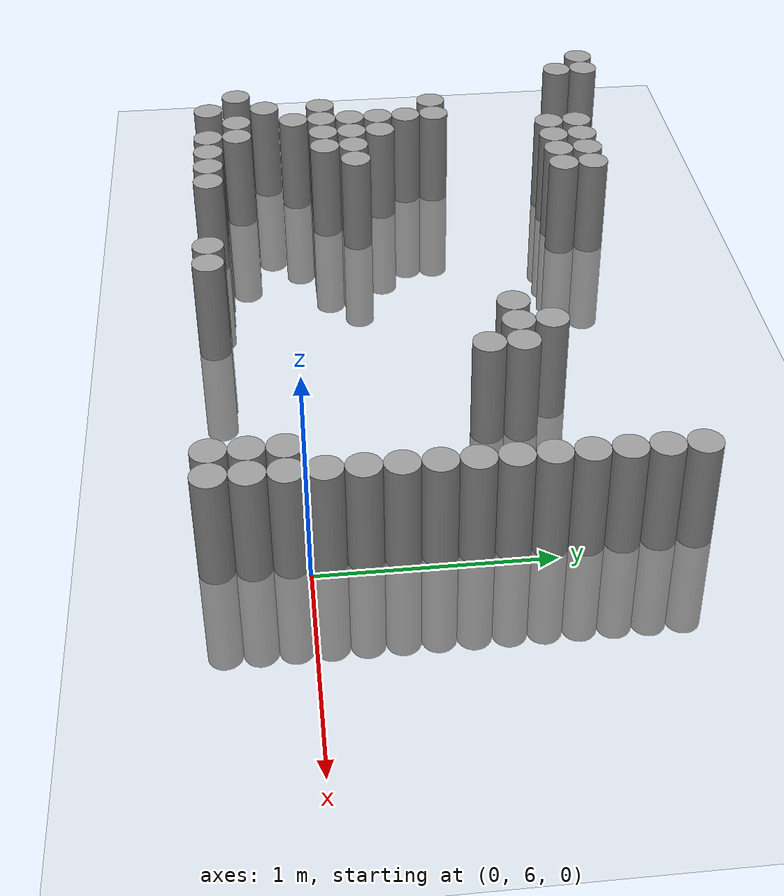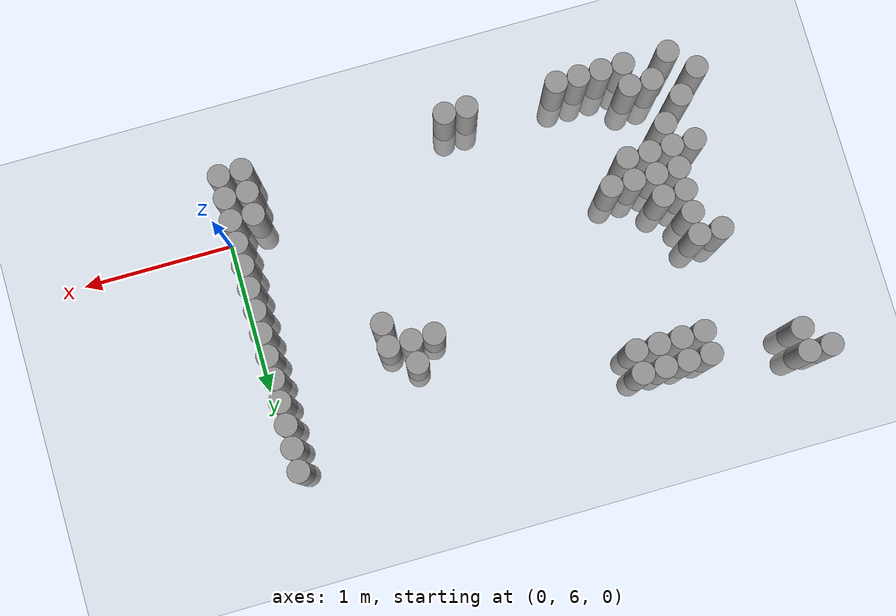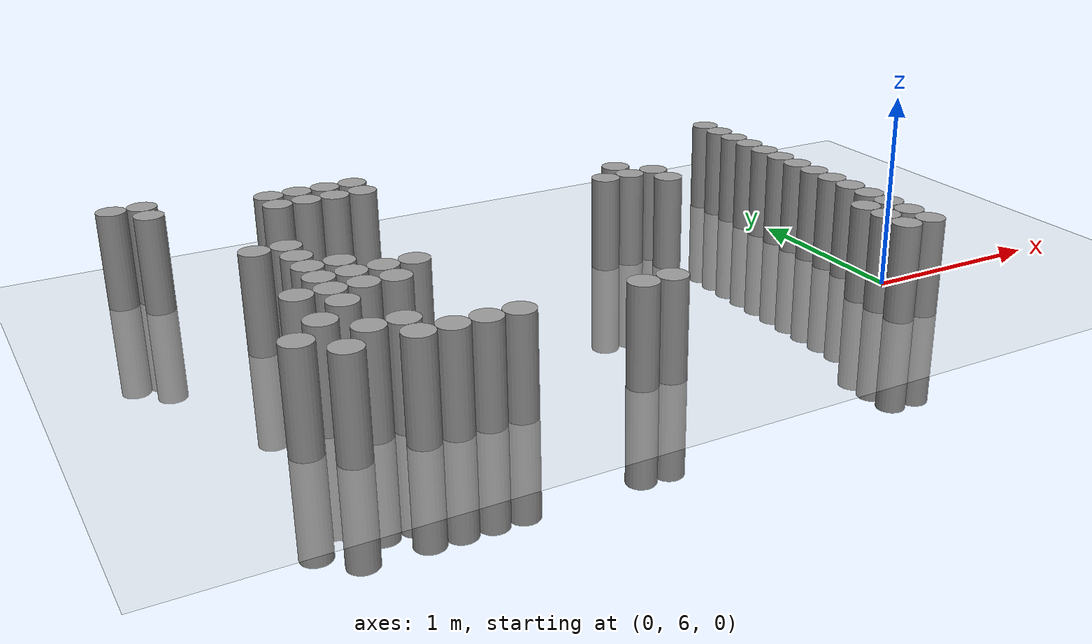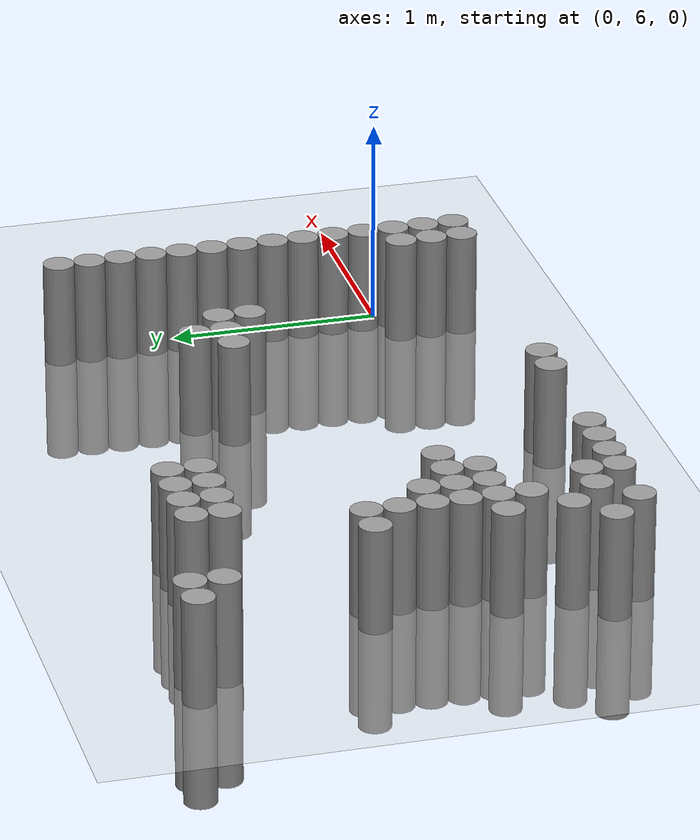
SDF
<sdf version="1.6">
 <world name="default">
  <model name="ground_plane">
   <static>1</static>
   <static>1</static>
   <link name="link">
    <collision name="collision">
     <geometry><plane><normal>0 0 1</normal><size>100 100</size></plane></geometry>
     <surface><friction><ode><mu>100</mu><mu2>50</mu2></ode></friction></surface>
    </collision>
    <visual name="visual">
     <cast_shadows>0</cast_shadows>
     <geometry><plane><normal>0 0 1</normal><size>100 100</size></plane></geometry>
     <material>
      <script><uri>file://media/materials/scripts/gazebo.material</uri><name>Gazebo/Grey</name></script>
     </material>
    </visual>
   </link>
  </model>
  <model name="unit_cylinder_164">
   <static>1</static>
   <pose>-3.525000 7.725000 0.000000 0.000000 0.000000 0.000000</pose>
   <link name="link">
    <inertial>
     <mass>1</mass>
     <inertia><ixx>0.145833</ixx><ixy>0</ixy><ixz>0</ixz><iyy>0.145833</iyy><iyz>0</iyz><izz>0.125</izz></inertia>
    </inertial>
    <collision name="collision">
     <geometry><cylinder><radius>0.075000</radius><length>1</length></cylinder></geometry>
    </collision>
    <visual name="visual">
     <geometry><cylinder><radius>0.075000</radius><length>1</length></cylinder></geometry>
     <material>
      <script><name>Gazebo/Grey</name><uri>file://media/materials/scripts/gazebo.material</uri></script>
     </material>
    </visual>
   </link>
  </model>
  <model name="unit_cylinder_165">
   <static>1</static>
   <pose>-3.375000 7.575000 0.000000 0.000000 0.000000 0.000000</pose>
   <link name="link">
    <inertial>
     <mass>1</mass>
     <inertia><ixx>0.145833</ixx><ixy>0</ixy><ixz>0</ixz><iyy>0.145833</iyy><iyz>0</iyz><izz>0.125</izz></inertia>
    </inertial>
    <collision name="collision">
     <geometry><cylinder><radius>0.075000</radius><length>1</length></cylinder></geometry>
    </collision>
    <visual name="visual">
     <geometry><cylinder><radius>0.075000</radius><length>1</length></cylinder></geometry>
     <material>
      <script><name>Gazebo/Grey</name><uri>file://media/materials/scripts/gazebo.material</uri></script>
     </material>
    </visual>
   </link>
  </model>
  <model name="unit_cylinder_166">
   <static>1</static>
   <pose>-3.375000 7.725000 0.000000 0.000000 0.000000 0.000000</pose>
   <link name="link">
    <inertial>
     <mass>1</mass>
     <inertia><ixx>0.145833</ixx><ixy>0</ixy><ixz>0</ixz><iyy>0.145833</iyy><iyz>0</iyz><izz>0.125</izz></inertia>
    </inertial>
    <collision name="collision">
     <geometry><cylinder><radius>0.075000</radius><length>1</length></cylinder></geometry>
    </collision>
    <visual name="visual">
     <geometry><cylinder><radius>0.075000</radius><length>1</length></cylinder></geometry>
     <material>
      <script><name>Gazebo/Grey</name><uri>file://media/materials/scripts/gazebo.material</uri></script>
     </material>
    </visual>
   </link>
  </model>
  <model name="unit_cylinder_167">
   <static>1</static>
   <pose>-3.225000 5.775000 0.000000 0.000000 0.000000 0.000000</pose>
   <link name="link">
    <inertial>
     <mass>1</mass>
     <inertia><ixx>0.145833</ixx><ixy>0</ixy><ixz>0</ixz><iyy>0.145833</iyy><iyz>0</iyz><izz>0.125</izz></inertia>
    </inertial>
    <collision name="collision">
     <geometry><cylinder><radius>0.075000</radius><length>1</length></cylinder></geometry>
    </collision>
    <visual name="visual">
     <geometry><cylinder><radius>0.075000</radius><length>1</length></cylinder></geometry>
     <material>
      <script><name>Gazebo/Grey</name><uri>file://media/materials/scripts/gazebo.material</uri></script>
     </material>
    </visual>
   </link>
  </model>
  <model name="unit_cylinder_168">
   <static>1</static>
   <pose>-3.075000 5.625000 0.000000 0.000000 0.000000 0.000000</pose>
   <link name="link">
    <inertial>
     <mass>1</mass>
     <inertia><ixx>0.145833</ixx><ixy>0</ixy><ixz>0</ixz><iyy>0.145833</iyy><iyz>0</iyz><izz>0.125</izz></inertia>
    </inertial>
    <collision name="collision">
     <geometry><cylinder><radius>0.075000</radius><length>1</length></cylinder></geometry>
    </collision>
    <visual name="visual">
     <geometry><cylinder><radius>0.075000</radius><length>1</length></cylinder></geometry>
     <material>
      <script><name>Gazebo/Grey</name><uri>file://media/materials/scripts/gazebo.material</uri></script>
     </material>
    </visual>
   </link>
  </model>
  <model name="unit_cylinder_169">
   <static>1</static>
   <pose>-3.075000 5.925000 0.000000 0.000000 0.000000 0.000000</pose>
   <link name="link">
    <inertial>
     <mass>1</mass>
     <inertia><ixx>0.145833</ixx><ixy>0</ixy><ixz>0</ixz><iyy>0.145833</iyy><iyz>0</iyz><izz>0.125</izz></inertia>
    </inertial>
    <collision name="collision">
     <geometry><cylinder><radius>0.075000</radius><length>1</length></cylinder></geometry>
    </collision>
    <visual name="visual">
     <geometry><cylinder><radius>0.075000</radius><length>1</length></cylinder></geometry>
     <material>
      <script><name>Gazebo/Grey</name><uri>file://media/materials/scripts/gazebo.material</uri></script>
     </material>
    </visual>
   </link>
  </model>
  <model name="unit_cylinder_170">
   <static>1</static>
   <pose>-3.075000 6.225000 0.000000 0.000000 0.000000 0.000000</pose>
   <link name="link">
    <inertial>
     <mass>1</mass>
     <inertia><ixx>0.145833</ixx><ixy>0</ixy><ixz>0</ixz><iyy>0.145833</iyy><iyz>0</iyz><izz>0.125</izz></inertia>
    </inertial>
    <collision name="collision">
     <geometry><cylinder><radius>0.075000</radius><length>1</length></cylinder></geometry>
    </collision>
    <visual name="visual">
     <geometry><cylinder><radius>0.075000</radius><length>1</length></cylinder></geometry>
     <material>
      <script><name>Gazebo/Grey</name><uri>file://media/materials/scripts/gazebo.material</uri></script>
     </material>
    </visual>
   </link>
  </model>
  <model name="unit_cylinder_171">
   <static>1</static>
   <pose>-3.075000 6.825000 0.000000 0.000000 0.000000 0.000000</pose>
   <link name="link">
    <inertial>
     <mass>1</mass>
     <inertia><ixx>0.145833</ixx><ixy>0</ixy><ixz>0</ixz><iyy>0.145833</iyy><iyz>0</iyz><izz>0.125</izz></inertia>
    </inertial>
    <collision name="collision">
     <geometry><cylinder><radius>0.075000</radius><length>1</length></cylinder></geometry>
    </collision>
    <visual name="visual">
     <geometry><cylinder><radius>0.075000</radius><length>1</length></cylinder></geometry>
     <material>
      <script><name>Gazebo/Grey</name><uri>file://media/materials/scripts/gazebo.material</uri></script>
     </material>
    </visual>
   </link>
  </model>
  <model name="unit_cylinder_172">
   <static>1</static>
   <pose>-2.925000 5.775000 0.000000 0.000000 0.000000 0.000000</pose>
   <link name="link">
    <inertial>
     <mass>1</mass>
     <inertia><ixx>0.145833</ixx><ixy>0</ixy><ixz>0</ixz><iyy>0.145833</iyy><iyz>0</iyz><izz>0.125</izz></inertia>
    </inertial>
    <collision name="collision">
     <geometry><cylinder><radius>0.075000</radius><length>1</length></cylinder></geometry>
    </collision>
    <visual name="visual">
     <geometry><cylinder><radius>0.075000</radius><length>1</length></cylinder></geometry>
     <material>
      <script><name>Gazebo/Grey</name><uri>file://media/materials/scripts/gazebo.material</uri></script>
     </material>
    </visual>
   </link>
  </model>
  <model name="unit_cylinder_173">
   <static>1</static>
   <pose>-2.925000 6.075000 0.000000 0.000000 0.000000 0.000000</pose>
   <link name="link">
    <inertial>
     <mass>1</mass>
     <inertia><ixx>0.145833</ixx><ixy>0</ixy><ixz>0</ixz><iyy>0.145833</iyy><iyz>0</iyz><izz>0.125</izz></inertia>
    </inertial>
    <collision name="collision">
     <geometry><cylinder><radius>0.075000</radius><length>1</length></cylinder></geometry>
    </collision>
    <visual name="visual">
     <geometry><cylinder><radius>0.075000</radius><length>1</length></cylinder></geometry>
     <material>
      <script><name>Gazebo/Grey</name><uri>file://media/materials/scripts/gazebo.material</uri></script>
     </material>
    </visual>
   </link>
  </model>
  <model name="unit_cylinder_174">
   <static>1</static>
   <pose>-2.925000 6.225000 0.000000 0.000000 0.000000 0.000000</pose>
   <link name="link">
    <inertial>
     <mass>1</mass>
     <inertia><ixx>0.145833</ixx><ixy>0</ixy><ixz>0</ixz><iyy>0.145833</iyy><iyz>0</iyz><izz>0.125</izz></inertia>
    </inertial>
    <collision name="collision">
     <geometry><cylinder><radius>0.075000</radius><length>1</length></cylinder></geometry>
    </collision>
    <visual name="visual">
     <geometry><cylinder><radius>0.075000</radius><length>1</length></cylinder></geometry>
     <material>
      <script><name>Gazebo/Grey</name><uri>file://media/materials/scripts/gazebo.material</uri></script>
     </material>
    </visual>
   </link>
  </model>
  <model name="unit_cylinder_175">
   <static>1</static>
   <pose>-2.925000 6.375000 0.000000 0.000000 0.000000 0.000000</pose>
   <link name="link">
    <inertial>
     <mass>1</mass>
     <inertia><ixx>0.145833</ixx><ixy>0</ixy><ixz>0</ixz><iyy>0.145833</iyy><iyz>0</iyz><izz>0.125</izz></inertia>
    </inertial>
    <collision name="collision">
     <geometry><cylinder><radius>0.075000</radius><length>1</length></cylinder></geometry>
    </collision>
    <visual name="visual">
     <geometry><cylinder><radius>0.075000</radius><length>1</length></cylinder></geometry>
     <material>
      <script><name>Gazebo/Grey</name><uri>file://media/materials/scripts/gazebo.material</uri></script>
     </material>
    </visual>
   </link>
  </model>
  <model name="unit_cylinder_176">
   <static>1</static>
   <pose>-2.925000 6.525000 0.000000 0.000000 0.000000 0.000000</pose>
   <link name="link">
    <inertial>
     <mass>1</mass>
     <inertia><ixx>0.145833</ixx><ixy>0</ixy><ixz>0</ixz><iyy>0.145833</iyy><iyz>0</iyz><izz>0.125</izz></inertia>
    </inertial>
    <collision name="collision">
     <geometry><cylinder><radius>0.075000</radius><length>1</length></cylinder></geometry>
    </collision>
    <visual name="visual">
     <geometry><cylinder><radius>0.075000</radius><length>1</length></cylinder></geometry>
     <material>
      <script><name>Gazebo/Grey</name><uri>file://media/materials/scripts/gazebo.material</uri></script>
     </material>
    </visual>
   </link>
  </model>
  <model name="unit_cylinder_177">
   <static>1</static>
   <pose>-2.925000 6.675000 0.000000 0.000000 0.000000 0.000000</pose>
   <link name="link">
    <inertial>
     <mass>1</mass>
     <inertia><ixx>0.145833</ixx><ixy>0</ixy><ixz>0</ixz><iyy>0.145833</iyy><iyz>0</iyz><izz>0.125</izz></inertia>
    </inertial>
    <collision name="collision">
     <geometry><cylinder><radius>0.075000</radius><length>1</length></cylinder></geometry>
    </collision>
    <visual name="visual">
     <geometry><cylinder><radius>0.075000</radius><length>1</length></cylinder></geometry>
     <material>
      <script><name>Gazebo/Grey</name><uri>file://media/materials/scripts/gazebo.material</uri></script>
     </material>
    </visual>
   </link>
  </model>
  <model name="unit_cylinder_178">
   <static>1</static>
   <pose>-2.925000 6.825000 0.000000 0.000000 0.000000 0.000000</pose>
   <link name="link">
    <inertial>
     <mass>1</mass>
     <inertia><ixx>0.145833</ixx><ixy>0</ixy><ixz>0</ixz><iyy>0.145833</iyy><iyz>0</iyz><izz>0.125</izz></inertia>
    </inertial>
    <collision name="collision">
     <geometry><cylinder><radius>0.075000</radius><length>1</length></cylinder></geometry>
    </collision>
    <visual name="visual">
     <geometry><cylinder><radius>0.075000</radius><length>1</length></cylinder></geometry>
     <material>
      <script><name>Gazebo/Grey</name><uri>file://media/materials/scripts/gazebo.material</uri></script>
     </material>
    </visual>
   </link>
  </model>
  <model name="unit_cylinder_180">
   <static>1</static>
   <pose>-2.775000 5.625000 0.000000 0.000000 0.000000 0.000000</pose>
   <link name="link">
    <inertial>
     <mass>1</mass>
     <inertia><ixx>0.145833</ixx><ixy>0</ixy><ixz>0</ixz><iyy>0.145833</iyy><iyz>0</iyz><izz>0.125</izz></inertia>
    </inertial>
    <collision name="collision">
     <geometry><cylinder><radius>0.075000</radius><length>1</length></cylinder></geometry>
    </collision>
    <visual name="visual">
     <geometry><cylinder><radius>0.075000</radius><length>1</length></cylinder></geometry>
     <material>
      <script><name>Gazebo/Grey</name><uri>file://media/materials/scripts/gazebo.material</uri></script>
     </material>
    </visual>
   </link>
  </model>
  <model name="unit_cylinder_181">
   <static>1</static>
   <pose>-2.775000 5.775000 0.000000 0.000000 0.000000 0.000000</pose>
   <link name="link">
    <inertial>
     <mass>1</mass>
     <inertia><ixx>0.145833</ixx><ixy>0</ixy><ixz>0</ixz><iyy>0.145833</iyy><iyz>0</iyz><izz>0.125</izz></inertia>
    </inertial>
    <collision name="collision">
     <geometry><cylinder><radius>0.075000</radius><length>1</length></cylinder></geometry>
    </collision>
    <visual name="visual">
     <geometry><cylinder><radius>0.075000</radius><length>1</length></cylinder></geometry>
     <material>
      <script><name>Gazebo/Grey</name><uri>file://media/materials/scripts/gazebo.material</uri></script>
     </material>
    </visual>
   </link>
  </model>
  <model name="unit_cylinder_182">
   <static>1</static>
   <pose>-2.775000 6.225000 0.000000 0.000000 0.000000 0.000000</pose>
   <link name="link">
    <inertial>
     <mass>1</mass>
     <inertia><ixx>0.145833</ixx><ixy>0</ixy><ixz>0</ixz><iyy>0.145833</iyy><iyz>0</iyz><izz>0.125</izz></inertia>
    </inertial>
    <collision name="collision">
     <geometry><cylinder><radius>0.075000</radius><length>1</length></cylinder></geometry>
    </collision>
    <visual name="visual">
     <geometry><cylinder><radius>0.075000</radius><length>1</length></cylinder></geometry>
     <material>
      <script><name>Gazebo/Grey</name><uri>file://media/materials/scripts/gazebo.material</uri></script>
     </material>
    </visual>
   </link>
  </model>
  <model name="unit_cylinder_183">
   <static>1</static>
   <pose>-2.775000 6.375000 0.000000 0.000000 0.000000 0.000000</pose>
   <link name="link">
    <inertial>
     <mass>1</mass>
     <inertia><ixx>0.145833</ixx><ixy>0</ixy><ixz>0</ixz><iyy>0.145833</iyy><iyz>0</iyz><izz>0.125</izz></inertia>
    </inertial>
    <collision name="collision">
     <geometry><cylinder><radius>0.075000</radius><length>1</length></cylinder></geometry>
    </collision>
    <visual name="visual">
     <geometry><cylinder><radius>0.075000</radius><length>1</length></cylinder></geometry>
     <material>
      <script><name>Gazebo/Grey</name><uri>file://media/materials/scripts/gazebo.material</uri></script>
     </material>
    </visual>
   </link>
  </model>
  <model name="unit_cylinder_184">
   <static>1</static>
   <pose>-2.775000 6.525000 0.000000 0.000000 0.000000 0.000000</pose>
   <link name="link">
    <inertial>
     <mass>1</mass>
     <inertia><ixx>0.145833</ixx><ixy>0</ixy><ixz>0</ixz><iyy>0.145833</iyy><iyz>0</iyz><izz>0.125</izz></inertia>
    </inertial>
    <collision name="collision">
     <geometry><cylinder><radius>0.075000</radius><length>1</length></cylinder></geometry>
    </collision>
    <visual name="visual">
     <geometry><cylinder><radius>0.075000</radius><length>1</length></cylinder></geometry>
     <material>
      <script><name>Gazebo/Grey</name><uri>file://media/materials/scripts/gazebo.material</uri></script>
     </material>
    </visual>
   </link>
  </model>
  <model name="unit_cylinder_185">
   <static>1</static>
   <pose>-2.775000 7.425000 0.000000 0.000000 0.000000 0.000000</pose>
   <link name="link">
    <inertial>
     <mass>1</mass>
     <inertia><ixx>0.145833</ixx><ixy>0</ixy><ixz>0</ixz><iyy>0.145833</iyy><iyz>0</iyz><izz>0.125</izz></inertia>
    </inertial>
    <collision name="collision">
     <geometry><cylinder><radius>0.075000</radius><length>1</length></cylinder></geometry>
    </collision>
    <visual name="visual">
     <geometry><cylinder><radius>0.075000</radius><length>1</length></cylinder></geometry>
     <material>
      <script><name>Gazebo/Grey</name><uri>file://media/materials/scripts/gazebo.material</uri></script>
     </material>
    </visual>
   </link>
  </model>
  <model name="unit_cylinder_186">
   <static>1</static>
   <pose>-2.775000 7.575000 0.000000 0.000000 0.000000 0.000000</pose>
   <link name="link">
    <inertial>
     <mass>1</mass>
     <inertia><ixx>0.145833</ixx><ixy>0</ixy><ixz>0</ixz><iyy>0.145833</iyy><iyz>0</iyz><izz>0.125</izz></inertia>
    </inertial>
    <collision name="collision">
     <geometry><cylinder><radius>0.075000</radius><length>1</length></cylinder></geometry>
    </collision>
    <visual name="visual">
     <geometry><cylinder><radius>0.075000</radius><length>1</length></cylinder></geometry>
     <material>
      <script><name>Gazebo/Grey</name><uri>file://media/materials/scripts/gazebo.material</uri></script>
     </material>
    </visual>
   </link>
  </model>
  <model name="unit_cylinder_192">
   <static>1</static>
   <pose>-2.625000 5.625000 0.000000 0.000000 0.000000 0.000000</pose>
   <link name="link">
    <inertial>
     <mass>1</mass>
     <inertia><ixx>0.145833</ixx><ixy>0</ixy><ixz>0</ixz><iyy>0.145833</iyy><iyz>0</iyz><izz>0.125</izz></inertia>
    </inertial>
    <collision name="collision">
     <geometry><cylinder><radius>0.075000</radius><length>1</length></cylinder></geometry>
    </collision>
    <visual name="visual">
     <geometry><cylinder><radius>0.075000</radius><length>1</length></cylinder></geometry>
     <material>
      <script><name>Gazebo/Grey</name><uri>file://media/materials/scripts/gazebo.material</uri></script>
     </material>
    </visual>
   </link>
  </model>
  <model name="unit_cylinder_193">
   <static>1</static>
   <pose>-2.625000 6.225000 0.000000 0.000000 0.000000 0.000000</pose>
   <link name="link">
    <inertial>
     <mass>1</mass>
     <inertia><ixx>0.145833</ixx><ixy>0</ixy><ixz>0</ixz><iyy>0.145833</iyy><iyz>0</iyz><izz>0.125</izz></inertia>
    </inertial>
    <collision name="collision">
     <geometry><cylinder><radius>0.075000</radius><length>1</length></cylinder></geometry>
    </collision>
    <visual name="visual">
     <geometry><cylinder><radius>0.075000</radius><length>1</length></cylinder></geometry>
     <material>
      <script><name>Gazebo/Grey</name><uri>file://media/materials/scripts/gazebo.material</uri></script>
     </material>
    </visual>
   </link>
  </model>
  <model name="unit_cylinder_194">
   <static>1</static>
   <pose>-2.625000 6.375000 0.000000 0.000000 0.000000 0.000000</pose>
   <link name="link">
    <inertial>
     <mass>1</mass>
     <inertia><ixx>0.145833</ixx><ixy>0</ixy><ixz>0</ixz><iyy>0.145833</iyy><iyz>0</iyz><izz>0.125</izz></inertia>
    </inertial>
    <collision name="collision">
     <geometry><cylinder><radius>0.075000</radius><length>1</length></cylinder></geometry>
    </collision>
    <visual name="visual">
     <geometry><cylinder><radius>0.075000</radius><length>1</length></cylinder></geometry>
     <material>
      <script><name>Gazebo/Grey</name><uri>file://media/materials/scripts/gazebo.material</uri></script>
     </material>
    </visual>
   </link>
  </model>
  <model name="unit_cylinder_195">
   <static>1</static>
   <pose>-2.625000 7.425000 0.000000 0.000000 0.000000 0.000000</pose>
   <link name="link">
    <inertial>
     <mass>1</mass>
     <inertia><ixx>0.145833</ixx><ixy>0</ixy><ixz>0</ixz><iyy>0.145833</iyy><iyz>0</iyz><izz>0.125</izz></inertia>
    </inertial>
    <collision name="collision">
     <geometry><cylinder><radius>0.075000</radius><length>1</length></cylinder></geometry>
    </collision>
    <visual name="visual">
     <geometry><cylinder><radius>0.075000</radius><length>1</length></cylinder></geometry>
     <material>
      <script><name>Gazebo/Grey</name><uri>file://media/materials/scripts/gazebo.material</uri></script>
     </material>
    </visual>
   </link>
  </model>
  <model name="unit_cylinder_196">
   <static>1</static>
   <pose>-2.625000 7.575000 0.000000 0.000000 0.000000 0.000000</pose>
   <link name="link">
    <inertial>
     <mass>1</mass>
     <inertia><ixx>0.145833</ixx><ixy>0</ixy><ixz>0</ixz><iyy>0.145833</iyy><iyz>0</iyz><izz>0.125</izz></inertia>
    </inertial>
    <collision name="collision">
     <geometry><cylinder><radius>0.075000</radius><length>1</length></cylinder></geometry>
    </collision>
    <visual name="visual">
     <geometry><cylinder><radius>0.075000</radius><length>1</length></cylinder></geometry>
     <material>
      <script><name>Gazebo/Grey</name><uri>file://media/materials/scripts/gazebo.material</uri></script>
     </material>
    </visual>
   </link>
  </model>
  <model name="unit_cylinder_200">
   <static>1</static>
   <pose>-2.475000 5.625000 0.000000 0.000000 0.000000 0.000000</pose>
   <link name="link">
    <inertial>
     <mass>1</mass>
     <inertia><ixx>0.145833</ixx><ixy>0</ixy><ixz>0</ixz><iyy>0.145833</iyy><iyz>0</iyz><izz>0.125</izz></inertia>
    </inertial>
    <collision name="collision">
     <geometry><cylinder><radius>0.075000</radius><length>1</length></cylinder></geometry>
    </collision>
    <visual name="visual">
     <geometry><cylinder><radius>0.075000</radius><length>1</length></cylinder></geometry>
     <material>
      <script><name>Gazebo/Grey</name><uri>file://media/materials/scripts/gazebo.material</uri></script>
     </material>
    </visual>
   </link>
  </model>
  <model name="unit_cylinder_201">
   <static>1</static>
   <pose>-2.475000 6.375000 0.000000 0.000000 0.000000 0.000000</pose>
   <link name="link">
    <inertial>
     <mass>1</mass>
     <inertia><ixx>0.145833</ixx><ixy>0</ixy><ixz>0</ixz><iyy>0.145833</iyy><iyz>0</iyz><izz>0.125</izz></inertia>
    </inertial>
    <collision name="collision">
     <geometry><cylinder><radius>0.075000</radius><length>1</length></cylinder></geometry>
    </collision>
    <visual name="visual">
     <geometry><cylinder><radius>0.075000</radius><length>1</length></cylinder></geometry>
     <material>
      <script><name>Gazebo/Grey</name><uri>file://media/materials/scripts/gazebo.material</uri></script>
     </material>
    </visual>
   </link>
  </model>
  <model name="unit_cylinder_202">
   <static>1</static>
   <pose>-2.475000 7.425000 0.000000 0.000000 0.000000 0.000000</pose>
   <link name="link">
    <inertial>
     <mass>1</mass>
     <inertia><ixx>0.145833</ixx><ixy>0</ixy><ixz>0</ixz><iyy>0.145833</iyy><iyz>0</iyz><izz>0.125</izz></inertia>
    </inertial>
    <collision name="collision">
     <geometry><cylinder><radius>0.075000</radius><length>1</length></cylinder></geometry>
    </collision>
    <visual name="visual">
     <geometry><cylinder><radius>0.075000</radius><length>1</length></cylinder></geometry>
     <material>
      <script><name>Gazebo/Grey</name><uri>file://media/materials/scripts/gazebo.material</uri></script>
     </material>
    </visual>
   </link>
  </model>
  <model name="unit_cylinder_203">
   <static>1</static>
   <pose>-2.475000 7.575000 0.000000 0.000000 0.000000 0.000000</pose>
   <link name="link">
    <inertial>
     <mass>1</mass>
     <inertia><ixx>0.145833</ixx><ixy>0</ixy><ixz>0</ixz><iyy>0.145833</iyy><iyz>0</iyz><izz>0.125</izz></inertia>
    </inertial>
    <collision name="collision">
     <geometry><cylinder><radius>0.075000</radius><length>1</length></cylinder></geometry>
    </collision>
    <visual name="visual">
     <geometry><cylinder><radius>0.075000</radius><length>1</length></cylinder></geometry>
     <material>
      <script><name>Gazebo/Grey</name><uri>file://media/materials/scripts/gazebo.material</uri></script>
     </material>
    </visual>
   </link>
  </model>
  <model name="unit_cylinder_206">
   <static>1</static>
   <pose>-2.325000 5.625000 0.000000 0.000000 0.000000 0.000000</pose>
   <link name="link">
    <inertial>
     <mass>1</mass>
     <inertia><ixx>0.145833</ixx><ixy>0</ixy><ixz>0</ixz><iyy>0.145833</iyy><iyz>0</iyz><izz>0.125</izz></inertia>
    </inertial>
    <collision name="collision">
     <geometry><cylinder><radius>0.075000</radius><length>1</length></cylinder></geometry>
    </collision>
    <visual name="visual">
     <geometry><cylinder><radius>0.075000</radius><length>1</length></cylinder></geometry>
     <material>
      <script><name>Gazebo/Grey</name><uri>file://media/materials/scripts/gazebo.material</uri></script>
     </material>
    </visual>
   </link>
  </model>
  <model name="unit_cylinder_207">
   <static>1</static>
   <pose>-2.325000 7.425000 0.000000 0.000000 0.000000 0.000000</pose>
   <link name="link">
    <inertial>
     <mass>1</mass>
     <inertia><ixx>0.145833</ixx><ixy>0</ixy><ixz>0</ixz><iyy>0.145833</iyy><iyz>0</iyz><izz>0.125</izz></inertia>
    </inertial>
    <collision name="collision">
     <geometry><cylinder><radius>0.075000</radius><length>1</length></cylinder></geometry>
    </collision>
    <visual name="visual">
     <geometry><cylinder><radius>0.075000</radius><length>1</length></cylinder></geometry>
     <material>
      <script><name>Gazebo/Grey</name><uri>file://media/materials/scripts/gazebo.material</uri></script>
     </material>
    </visual>
   </link>
  </model>
  <model name="unit_cylinder_208">
   <static>1</static>
   <pose>-2.325000 7.575000 0.000000 0.000000 0.000000 0.000000</pose>
   <link name="link">
    <inertial>
     <mass>1</mass>
     <inertia><ixx>0.145833</ixx><ixy>0</ixy><ixz>0</ixz><iyy>0.145833</iyy><iyz>0</iyz><izz>0.125</izz></inertia>
    </inertial>
    <collision name="collision">
     <geometry><cylinder><radius>0.075000</radius><length>1</length></cylinder></geometry>
    </collision>
    <visual name="visual">
     <geometry><cylinder><radius>0.075000</radius><length>1</length></cylinder></geometry>
     <material>
      <script><name>Gazebo/Grey</name><uri>file://media/materials/scripts/gazebo.material</uri></script>
     </material>
    </visual>
   </link>
  </model>
  <model name="unit_cylinder_214">
   <static>1</static>
   <pose>-1.725000 5.625000 0.000000 0.000000 0.000000 0.000000</pose>
   <link name="link">
    <inertial>
     <mass>1</mass>
     <inertia><ixx>0.145833</ixx><ixy>0</ixy><ixz>0</ixz><iyy>0.145833</iyy><iyz>0</iyz><izz>0.125</izz></inertia>
    </inertial>
    <collision name="collision">
     <geometry><cylinder><radius>0.075000</radius><length>1</length></cylinder></geometry>
    </collision>
    <visual name="visual">
     <geometry><cylinder><radius>0.075000</radius><length>1</length></cylinder></geometry>
     <material>
      <script><name>Gazebo/Grey</name><uri>file://media/materials/scripts/gazebo.material</uri></script>
     </material>
    </visual>
   </link>
  </model>
  <model name="unit_cylinder_217">
   <static>1</static>
   <pose>-1.575000 5.625000 0.000000 0.000000 0.000000 0.000000</pose>
   <link name="link">
    <inertial>
     <mass>1</mass>
     <inertia><ixx>0.145833</ixx><ixy>0</ixy><ixz>0</ixz><iyy>0.145833</iyy><iyz>0</iyz><izz>0.125</izz></inertia>
    </inertial>
    <collision name="collision">
     <geometry><cylinder><radius>0.075000</radius><length>1</length></cylinder></geometry>
    </collision>
    <visual name="visual">
     <geometry><cylinder><radius>0.075000</radius><length>1</length></cylinder></geometry>
     <material>
      <script><name>Gazebo/Grey</name><uri>file://media/materials/scripts/gazebo.material</uri></script>
     </material>
    </visual>
   </link>
  </model>
  <model name="unit_cylinder_218">
   <static>1</static>
   <pose>-1.125000 6.975000 0.000000 0.000000 0.000000 0.000000</pose>
   <link name="link">
    <inertial>
     <mass>1</mass>
     <inertia><ixx>0.145833</ixx><ixy>0</ixy><ixz>0</ixz><iyy>0.145833</iyy><iyz>0</iyz><izz>0.125</izz></inertia>
    </inertial>
    <collision name="collision">
     <geometry><cylinder><radius>0.075000</radius><length>1</length></cylinder></geometry>
    </collision>
    <visual name="visual">
     <geometry><cylinder><radius>0.075000</radius><length>1</length></cylinder></geometry>
     <material>
      <script><name>Gazebo/Grey</name><uri>file://media/materials/scripts/gazebo.material</uri></script>
     </material>
    </visual>
   </link>
  </model>
  <model name="unit_cylinder_221">
   <static>1</static>
   <pose>-0.975000 6.975000 0.000000 0.000000 0.000000 0.000000</pose>
   <link name="link">
    <inertial>
     <mass>1</mass>
     <inertia><ixx>0.145833</ixx><ixy>0</ixy><ixz>0</ixz><iyy>0.145833</iyy><iyz>0</iyz><izz>0.125</izz></inertia>
    </inertial>
    <collision name="collision">
     <geometry><cylinder><radius>0.075000</radius><length>1</length></cylinder></geometry>
    </collision>
    <visual name="visual">
     <geometry><cylinder><radius>0.075000</radius><length>1</length></cylinder></geometry>
     <material>
      <script><name>Gazebo/Grey</name><uri>file://media/materials/scripts/gazebo.material</uri></script>
     </material>
    </visual>
   </link>
  </model>
  <model name="unit_cylinder_222">
   <static>1</static>
   <pose>-0.975000 7.125000 0.000000 0.000000 0.000000 0.000000</pose>
   <link name="link">
    <inertial>
     <mass>1</mass>
     <inertia><ixx>0.145833</ixx><ixy>0</ixy><ixz>0</ixz><iyy>0.145833</iyy><iyz>0</iyz><izz>0.125</izz></inertia>
    </inertial>
    <collision name="collision">
     <geometry><cylinder><radius>0.075000</radius><length>1</length></cylinder></geometry>
    </collision>
    <visual name="visual">
     <geometry><cylinder><radius>0.075000</radius><length>1</length></cylinder></geometry>
     <material>
      <script><name>Gazebo/Grey</name><uri>file://media/materials/scripts/gazebo.material</uri></script>
     </material>
    </visual>
   </link>
  </model>
  <model name="unit_cylinder_228">
   <static>1</static>
   <pose>-0.825000 6.825000 0.000000 0.000000 0.000000 0.000000</pose>
   <link name="link">
    <inertial>
     <mass>1</mass>
     <inertia><ixx>0.145833</ixx><ixy>0</ixy><ixz>0</ixz><iyy>0.145833</iyy><iyz>0</iyz><izz>0.125</izz></inertia>
    </inertial>
    <collision name="collision">
     <geometry><cylinder><radius>0.075000</radius><length>1</length></cylinder></geometry>
    </collision>
    <visual name="visual">
     <geometry><cylinder><radius>0.075000</radius><length>1</length></cylinder></geometry>
     <material>
      <script><name>Gazebo/Grey</name><uri>file://media/materials/scripts/gazebo.material</uri></script>
     </material>
    </visual>
   </link>
  </model>
  <model name="unit_cylinder_229">
   <static>1</static>
   <pose>-0.825000 6.975000 0.000000 0.000000 0.000000 0.000000</pose>
   <link name="link">
    <inertial>
     <mass>1</mass>
     <inertia><ixx>0.145833</ixx><ixy>0</ixy><ixz>0</ixz><iyy>0.145833</iyy><iyz>0</iyz><izz>0.125</izz></inertia>
    </inertial>
    <collision name="collision">
     <geometry><cylinder><radius>0.075000</radius><length>1</length></cylinder></geometry>
    </collision>
    <visual name="visual">
     <geometry><cylinder><radius>0.075000</radius><length>1</length></cylinder></geometry>
     <material>
      <script><name>Gazebo/Grey</name><uri>file://media/materials/scripts/gazebo.material</uri></script>
     </material>
    </visual>
   </link>
  </model>
  <model name="unit_cylinder_251">
   <static>1</static>
   <pose>-0.225000 5.625000 0.000000 0.000000 0.000000 0.000000</pose>
   <link name="link">
    <inertial>
     <mass>1</mass>
     <inertia><ixx>0.145833</ixx><ixy>0</ixy><ixz>0</ixz><iyy>0.145833</iyy><iyz>0</iyz><izz>0.125</izz></inertia>
    </inertial>
    <collision name="collision">
     <geometry><cylinder><radius>0.075000</radius><length>1</length></cylinder></geometry>
    </collision>
    <visual name="visual">
     <geometry><cylinder><radius>0.075000</radius><length>1</length></cylinder></geometry>
     <material>
      <script><name>Gazebo/Grey</name><uri>file://media/materials/scripts/gazebo.material</uri></script>
     </material>
    </visual>
   </link>
  </model>
  <model name="unit_cylinder_252">
   <static>1</static>
   <pose>-0.225000 5.775000 0.000000 0.000000 0.000000 0.000000</pose>
   <link name="link">
    <inertial>
     <mass>1</mass>
     <inertia><ixx>0.145833</ixx><ixy>0</ixy><ixz>0</ixz><iyy>0.145833</iyy><iyz>0</iyz><izz>0.125</izz></inertia>
    </inertial>
    <collision name="collision">
     <geometry><cylinder><radius>0.075000</radius><length>1</length></cylinder></geometry>
    </collision>
    <visual name="visual">
     <geometry><cylinder><radius>0.075000</radius><length>1</length></cylinder></geometry>
     <material>
      <script><name>Gazebo/Grey</name><uri>file://media/materials/scripts/gazebo.material</uri></script>
     </material>
    </visual>
   </link>
  </model>
  <model name="unit_cylinder_253">
   <static>1</static>
   <pose>-0.225000 5.925000 0.000000 0.000000 0.000000 0.000000</pose>
   <link name="link">
    <inertial>
     <mass>1</mass>
     <inertia><ixx>0.145833</ixx><ixy>0</ixy><ixz>0</ixz><iyy>0.145833</iyy><iyz>0</iyz><izz>0.125</izz></inertia>
    </inertial>
    <collision name="collision">
     <geometry><cylinder><radius>0.075000</radius><length>1</length></cylinder></geometry>
    </collision>
    <visual name="visual">
     <geometry><cylinder><radius>0.075000</radius><length>1</length></cylinder></geometry>
     <material>
      <script><name>Gazebo/Grey</name><uri>file://media/materials/scripts/gazebo.material</uri></script>
     </material>
    </visual>
   </link>
  </model>
  <model name="unit_cylinder_264">
   <static>1</static>
   <pose>-0.075000 5.625000 0.000000 0.000000 0.000000 0.000000</pose>
   <link name="link">
    <inertial>
     <mass>1</mass>
     <inertia><ixx>0.145833</ixx><ixy>0</ixy><ixz>0</ixz><iyy>0.145833</iyy><iyz>0</iyz><izz>0.125</izz></inertia>
    </inertial>
    <collision name="collision">
     <geometry><cylinder><radius>0.075000</radius><length>1</length></cylinder></geometry>
    </collision>
    <visual name="visual">
     <geometry><cylinder><radius>0.075000</radius><length>1</length></cylinder></geometry>
     <material>
      <script><name>Gazebo/Grey</name><uri>file://media/materials/scripts/gazebo.material</uri></script>
     </material>
    </visual>
   </link>
  </model>
  <model name="unit_cylinder_265">
   <static>1</static>
   <pose>-0.075000 5.775000 0.000000 0.000000 0.000000 0.000000</pose>
   <link name="link">
    <inertial>
     <mass>1</mass>
     <inertia><ixx>0.145833</ixx><ixy>0</ixy><ixz>0</ixz><iyy>0.145833</iyy><iyz>0</iyz><izz>0.125</izz></inertia>
    </inertial>
    <collision name="collision">
     <geometry><cylinder><radius>0.075000</radius><length>1</length></cylinder></geometry>
    </collision>
    <visual name="visual">
     <geometry><cylinder><radius>0.075000</radius><length>1</length></cylinder></geometry>
     <material>
      <script><name>Gazebo/Grey</name><uri>file://media/materials/scripts/gazebo.material</uri></script>
     </material>
    </visual>
   </link>
  </model>
  <model name="unit_cylinder_266">
   <static>1</static>
   <pose>-0.075000 5.925000 0.000000 0.000000 0.000000 0.000000</pose>
   <link name="link">
    <inertial>
     <mass>1</mass>
     <inertia><ixx>0.145833</ixx><ixy>0</ixy><ixz>0</ixz><iyy>0.145833</iyy><iyz>0</iyz><izz>0.125</izz></inertia>
    </inertial>
    <collision name="collision">
     <geometry><cylinder><radius>0.075000</radius><length>1</length></cylinder></geometry>
    </collision>
    <visual name="visual">
     <geometry><cylinder><radius>0.075000</radius><length>1</length></cylinder></geometry>
     <material>
      <script><name>Gazebo/Grey</name><uri>file://media/materials/scripts/gazebo.material</uri></script>
     </material>
    </visual>
   </link>
  </model>
  <model name="unit_cylinder_267">
   <static>1</static>
   <pose>-0.075000 6.075000 0.000000 0.000000 0.000000 0.000000</pose>
   <link name="link">
    <inertial>
     <mass>1</mass>
     <inertia><ixx>0.145833</ixx><ixy>0</ixy><ixz>0</ixz><iyy>0.145833</iyy><iyz>0</iyz><izz>0.125</izz></inertia>
    </inertial>
    <collision name="collision">
     <geometry><cylinder><radius>0.075000</radius><length>1</length></cylinder></geometry>
    </collision>
    <visual name="visual">
     <geometry><cylinder><radius>0.075000</radius><length>1</length></cylinder></geometry>
     <material>
      <script><name>Gazebo/Grey</name><uri>file://media/materials/scripts/gazebo.material</uri></script>
     </material>
    </visual>
   </link>
  </model>
  <model name="unit_cylinder_268">
   <static>1</static>
   <pose>-0.075000 6.225000 0.000000 0.000000 0.000000 0.000000</pose>
   <link name="link">
    <inertial>
     <mass>1</mass>
     <inertia><ixx>0.145833</ixx><ixy>0</ixy><ixz>0</ixz><iyy>0.145833</iyy><iyz>0</iyz><izz>0.125</izz></inertia>
    </inertial>
    <collision name="collision">
     <geometry><cylinder><radius>0.075000</radius><length>1</length></cylinder></geometry>
    </collision>
    <visual name="visual">
     <geometry><cylinder><radius>0.075000</radius><length>1</length></cylinder></geometry>
     <material>
      <script><name>Gazebo/Grey</name><uri>file://media/materials/scripts/gazebo.material</uri></script>
     </material>
    </visual>
   </link>
  </model>
  <model name="unit_cylinder_269">
   <static>1</static>
   <pose>-0.075000 6.375000 0.000000 0.000000 0.000000 0.000000</pose>
   <link name="link">
    <inertial>
     <mass>1</mass>
     <inertia><ixx>0.145833</ixx><ixy>0</ixy><ixz>0</ixz><iyy>0.145833</iyy><iyz>0</iyz><izz>0.125</izz></inertia>
    </inertial>
    <collision name="collision">
     <geometry><cylinder><radius>0.075000</radius><length>1</length></cylinder></geometry>
    </collision>
    <visual name="visual">
     <geometry><cylinder><radius>0.075000</radius><length>1</length></cylinder></geometry>
     <material>
      <script><name>Gazebo/Grey</name><uri>file://media/materials/scripts/gazebo.material</uri></script>
     </material>
    </visual>
   </link>
  </model>
  <model name="unit_cylinder_270">
   <static>1</static>
   <pose>-0.075000 6.525000 0.000000 0.000000 0.000000 0.000000</pose>
   <link name="link">
    <inertial>
     <mass>1</mass>
     <inertia><ixx>0.145833</ixx><ixy>0</ixy><ixz>0</ixz><iyy>0.145833</iyy><iyz>0</iyz><izz>0.125</izz></inertia>
    </inertial>
    <collision name="collision">
     <geometry><cylinder><radius>0.075000</radius><length>1</length></cylinder></geometry>
    </collision>
    <visual name="visual">
     <geometry><cylinder><radius>0.075000</radius><length>1</length></cylinder></geometry>
     <material>
      <script><name>Gazebo/Grey</name><uri>file://media/materials/scripts/gazebo.material</uri></script>
     </material>
    </visual>
   </link>
  </model>
  <model name="unit_cylinder_271">
   <static>1</static>
   <pose>-0.075000 6.675000 0.000000 0.000000 0.000000 0.000000</pose>
   <link name="link">
    <inertial>
     <mass>1</mass>
     <inertia><ixx>0.145833</ixx><ixy>0</ixy><ixz>0</ixz><iyy>0.145833</iyy><iyz>0</iyz><izz>0.125</izz></inertia>
    </inertial>
    <collision name="collision">
     <geometry><cylinder><radius>0.075000</radius><length>1</length></cylinder></geometry>
    </collision>
    <visual name="visual">
     <geometry><cylinder><radius>0.075000</radius><length>1</length></cylinder></geometry>
     <material>
      <script><name>Gazebo/Grey</name><uri>file://media/materials/scripts/gazebo.material</uri></script>
     </material>
    </visual>
   </link>
  </model>
  <model name="unit_cylinder_272">
   <static>1</static>
   <pose>-0.075000 6.825000 0.000000 0.000000 0.000000 0.000000</pose>
   <link name="link">
    <inertial>
     <mass>1</mass>
     <inertia><ixx>0.145833</ixx><ixy>0</ixy><ixz>0</ixz><iyy>0.145833</iyy><iyz>0</iyz><izz>0.125</izz></inertia>
    </inertial>
    <collision name="collision">
     <geometry><cylinder><radius>0.075000</radius><length>1</length></cylinder></geometry>
    </collision>
    <visual name="visual">
     <geometry><cylinder><radius>0.075000</radius><length>1</length></cylinder></geometry>
     <material>
      <script><name>Gazebo/Grey</name><uri>file://media/materials/scripts/gazebo.material</uri></script>
     </material>
    </visual>
   </link>
  </model>
  <model name="unit_cylinder_273">
   <static>1</static>
   <pose>-0.075000 6.975000 0.000000 0.000000 0.000000 0.000000</pose>
   <link name="link">
    <inertial>
     <mass>1</mass>
     <inertia><ixx>0.145833</ixx><ixy>0</ixy><ixz>0</ixz><iyy>0.145833</iyy><iyz>0</iyz><izz>0.125</izz></inertia>
    </inertial>
    <collision name="collision">
     <geometry><cylinder><radius>0.075000</radius><length>1</length></cylinder></geometry>
    </collision>
    <visual name="visual">
     <geometry><cylinder><radius>0.075000</radius><length>1</length></cylinder></geometry>
     <material>
      <script><name>Gazebo/Grey</name><uri>file://media/materials/scripts/gazebo.material</uri></script>
     </material>
    </visual>
   </link>
  </model>
  <model name="unit_cylinder_274">
   <static>1</static>
   <pose>-0.075000 7.125000 0.000000 0.000000 0.000000 0.000000</pose>
   <link name="link">
    <inertial>
     <mass>1</mass>
     <inertia><ixx>0.145833</ixx><ixy>0</ixy><ixz>0</ixz><iyy>0.145833</iyy><iyz>0</iyz><izz>0.125</izz></inertia>
    </inertial>
    <collision name="collision">
     <geometry><cylinder><radius>0.075000</radius><length>1</length></cylinder></geometry>
    </collision>
    <visual name="visual">
     <geometry><cylinder><radius>0.075000</radius><length>1</length></cylinder></geometry>
     <material>
      <script><name>Gazebo/Grey</name><uri>file://media/materials/scripts/gazebo.material</uri></script>
     </material>
    </visual>
   </link>
  </model>
  <model name="unit_cylinder_275">
   <static>1</static>
   <pose>-0.075000 7.275000 0.000000 0.000000 0.000000 0.000000</pose>
   <link name="link">
    <inertial>
     <mass>1</mass>
     <inertia><ixx>0.145833</ixx><ixy>0</ixy><ixz>0</ixz><iyy>0.145833</iyy><iyz>0</iyz><izz>0.125</izz></inertia>
    </inertial>
    <collision name="collision">
     <geometry><cylinder><radius>0.075000</radius><length>1</length></cylinder></geometry>
    </collision>
    <visual name="visual">
     <geometry><cylinder><radius>0.075000</radius><length>1</length></cylinder></geometry>
     <material>
      <script><name>Gazebo/Grey</name><uri>file://media/materials/scripts/gazebo.material</uri></script>
     </material>
    </visual>
   </link>
  </model>
  <model name="unit_cylinder_276">
   <static>1</static>
   <pose>-0.075000 7.425000 0.000000 0.000000 0.000000 0.000000</pose>
   <link name="link">
    <inertial>
     <mass>1</mass>
     <inertia><ixx>0.145833</ixx><ixy>0</ixy><ixz>0</ixz><iyy>0.145833</iyy><iyz>0</iyz><izz>0.125</izz></inertia>
    </inertial>
    <collision name="collision">
     <geometry><cylinder><radius>0.075000</radius><length>1</length></cylinder></geometry>
    </collision>
    <visual name="visual">
     <geometry><cylinder><radius>0.075000</radius><length>1</length></cylinder></geometry>
     <material>
      <script><name>Gazebo/Grey</name><uri>file://media/materials/scripts/gazebo.material</uri></script>
     </material>
    </visual>
   </link>
  </model>
  <model name="unit_cylinder_277">
   <static>1</static>
   <pose>-0.075000 7.575000 0.000000 0.000000 0.000000 0.000000</pose>
   <link name="link">
    <inertial>
     <mass>1</mass>
     <inertia><ixx>0.145833</ixx><ixy>0</ixy><ixz>0</ixz><iyy>0.145833</iyy><iyz>0</iyz><izz>0.125</izz></inertia>
    </inertial>
    <collision name="collision">
     <geometry><cylinder><radius>0.075000</radius><length>1</length></cylinder></geometry>
    </collision>
    <visual name="visual">
     <geometry><cylinder><radius>0.075000</radius><length>1</length></cylinder></geometry>
     <material>
      <script><name>Gazebo/Grey</name><uri>file://media/materials/scripts/gazebo.material</uri></script>
     </material>
    </visual>
   </link>
  </model>
 </world>
</sdf>
